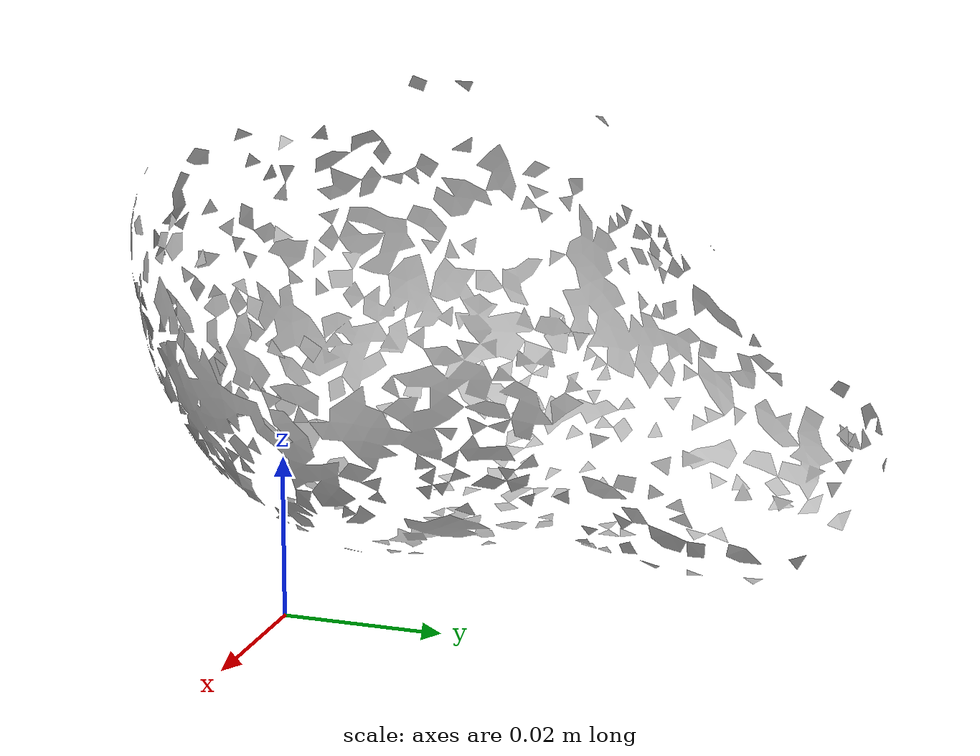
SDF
<?xml version="1.0" ?>
<sdf version="1.4">
  <model name='ycb_016_pear'>
    <link name='body'>
      <inertial>
        <mass>0.049</mass>
        <pose>-0.0325427338242 0.0110755354107 0.0300405214604 0 0 0</pose>
        <inertia>
          <ixx>3.29098077425e-05</ixx>
          <ixy>-8.92380314661e-07</ixy>
          <ixz>-3.70787907977e-08</ixz>
          <iyy>2.12300250904e-05</iyy>
          <iyz>4.19818593597e-06</iyz>
          <izz>3.1514320564e-05</izz>
        </inertia>
      </inertial>
      <visual name='ycb_016_pear_visual'>
        <pose>0 0 0 0 0 0</pose>
        <geometry>
          <mesh>
            <uri>model://ycb_016_pear/meshes/textured.dae</uri>
          </mesh>
        </geometry>
      </visual>
      <collision name='ycb_016_pear_collision'>
        <pose>0 0 0 0 0 0</pose>
        <geometry>
          <mesh>
            <uri>model://ycb_016_pear/meshes/nontextured.stl</uri>
          </mesh>
        </geometry>
        <max_contacts>10</max_contacts>
      </collision>
    </link>
  </model>
</sdf>
